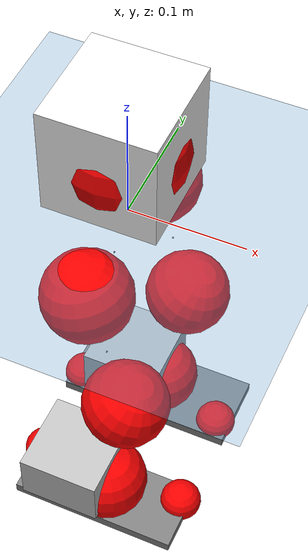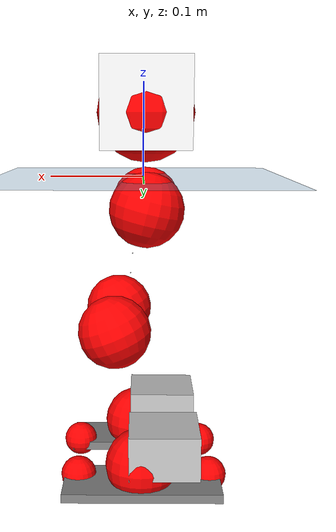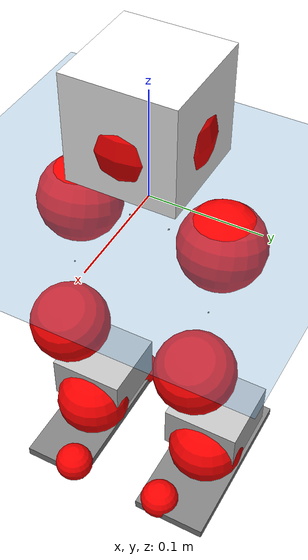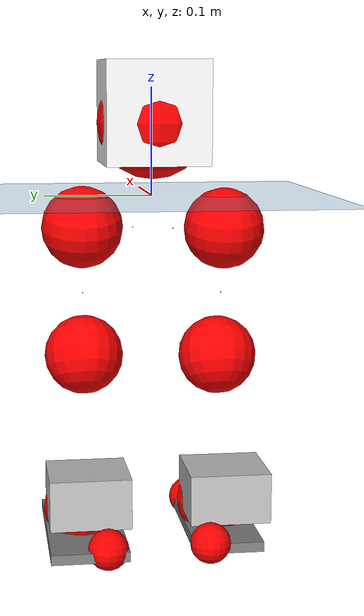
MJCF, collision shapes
<mujoco model="pi_12dof_release_v1">
  <compiler angle="radian" assetdir="assets" balanceinertia="true" inertiafromgeom="false"/>

  <option timestep="0.005" density="1.2" viscosity="2e-05"/>

  <size nkey="1"/>

  <visual>
    <quality shadowsize="8192"/>
    <map shadowclip="0.5"/>
  </visual>

  <default>
    <default class="/">
      <joint armature="0.01" damping="0.01" frictionloss="0.01"/>
      <geom contype="0" conaffinity="0" group="1" solref="-1000 -80"/>
      <site size="0.01 0.005 0.005" group="5"/>
      <general forcelimited="true" biastype="affine" gainprm="20" biasprm="0 -20 -0.5"/>
      <default class="foot">
        <geom size="0.0845 0.036 0.005" type="box" condim="6" group="4" priority="1" friction="0.9 0.2 0.2" solimp="0.015 1 0.005"/>
      </default>
      <default class="reward_collision_sphere">
        <geom group="5" rgba="1 0 0 1"/>
      </default>
    </default>
  </default>

  <asset>
    <texture type="skybox" colorspace="auto" name="//unnamed_texture_0" builtin="gradient" rgb1="0.95 0.95 0.95" rgb2="0.95 0.95 0.95" width="100" height="600"/>
    <texture type="2d" colorspace="auto" name="texplane" builtin="checker" rgb1="0.345 0.575 0.748" rgb2="0.345 0.575 0.748" markrgb="1 1 1" width="512" height="512"/>
    <material name="MatPlane" class="/" texture="texplane" texuniform="true" texrepeat="2 2" specular="0.9"/>
    <mesh name="baselink_1" class="/" file="baselink_1.STL"/>
    <mesh name="r_hip_pitch_link" class="/" file="r_hip_pitch_link.STL"/>
    <mesh name="r_hip_roll_link" class="/" file="r_hip_roll_link.STL"/>
    <mesh name="r_thigh_link" class="/" file="r_thigh_link.STL"/>
    <mesh name="r_calf_link" class="/" file="r_calf_link.STL"/>
    <mesh name="r_ankle_pitch_link" class="/" file="r_ankle_pitch_link.STL"/>
    <mesh name="r_ankle_roll_link" class="/" file="r_ankle_roll_link.STL"/>
    <mesh name="l_hip_pitch_link" class="/" file="l_hip_pitch_link.STL"/>
    <mesh name="l_hip_roll_link" class="/" file="l_hip_roll_link.STL"/>
    <mesh name="l_thigh_link" class="/" file="l_thigh_link.STL"/>
    <mesh name="l_calf_link" class="/" file="l_calf_link.STL"/>
    <mesh name="l_ankle_pitch_link" class="/" file="l_ankle_pitch_link.STL"/>
    <mesh name="l_ankle_roll_link" class="/" file="l_ankle_roll_link.STL"/>
  </asset>

  <worldbody>
    <geom name="floor" class="/" size="100 100 0.125" type="plane" group="0" material="MatPlane"/>
    <light name="toplight_shadow" class="/" pos="0 0 5" dir="0.0990148 0.0990148 -0.990148" type="directional" ambient="0.04 0.04 0.04" diffuse="0.55 0.55 0.55" specular="0.12 0.12 0.12"/>
    <light name="toplight_fill" class="/" pos="0 0 5" dir="0.0990148 0.0990148 -0.990148" type="directional" castshadow="false" ambient="0.04 0.04 0.04" diffuse="0.3 0.3 0.3" specular="0.08 0.08 0.08"/>
    <body name="trunk" pos="-0.00247552 -0.000951582 0.00093971" quat="1 -0.000198617 -0.000824855 5.02369e-05">
      <inertial pos="-0.000157068 0.000608658 0.0385271" quat="0.696923 0.0138779 0.0100944 0.716941" mass="1.85554" diaginertia="0.0125872 0.00423307 0.00340008"/>
      <joint name="//unnamed_joint_0" type="free"/>
      <geom name="//unnamed_geom_1" class="/" type="mesh" density="0" rgba="1 1 1 1" mesh="baselink_1"/>
      <geom name="//unnamed_geom_2" class="/" size="0.0476908 0.0476908 0.0476908" pos="0 0 0.0763876" type="box" rgba="1 1 1 1"/>
      <geom name="//unnamed_geom_3" class="reward_collision_sphere" size="0.0524599" pos="0 0 0.0668392"/>
      <site name="imu" class="/" pos="0.000319179 -0.00505621 0.00485522" size="0.00953817"/>
      <camera name="track" class="/" pos="0 -1.71616 0" quat="0.707107 0.707107 0 0" mode="trackcom"/>
      <camera name="ego_camera" class="/" pos="0.0786392 0 0.171872" quat="-0.5 -0.5 0.5 0.5"/>
      <body name="r_hip_pitch_link" pos="-0.000528988 -0.0190488 -0.0319434" quat="0.992056 -0.000269506 -0.125794 1.79154e-05">
        <inertial pos="-0.00149136 -0.0486397 0.000786968" quat="-0.0210866 0.706663 -0.0288082 0.706649" mass="0.328627" diaginertia="0.000141336 4.54189e-05 6.75312e-05"/>
        <joint name="r_hip_pitch_joint" class="/" pos="0 0 0" axis="0.000969683 -0.999999 0.000570517" range="-1.75189 1.22844" armature="0.0094962" damping="0.0158734" frictionloss="0.0100367"/>
        <geom name="//unnamed_geom_4" class="/" type="mesh" density="0" rgba="0.75294 0.75294 0.75294 1" mesh="r_hip_pitch_link"/>
        <geom name="//unnamed_geom_5" class="/" size="0.000476908 0.000476908 0.000476908" type="box" rgba="0.75294 0.75294 0.75294 1"/>
        <body name="r_hip_roll_link" pos="-0.000713888 -0.0486883 -0.000484263" quat="1 -4.10145e-05 -2.4734e-05 5.35269e-05">
          <inertial pos="0.00111024 0.000507625 -0.0567157" quat="0.704546 -0.077392 -0.0831456 0.700508" mass="0.339882" diaginertia="0.000419641 0.000127496 0.000102878"/>
          <joint name="r_hip_roll_joint" class="/" pos="0 0 0" axis="-1 -0.000348735 0.000420583" stiffness="0.000675378" range="-0.15577 0.48777" armature="0.00838713" damping="9.57306e-05" frictionloss="0.00962652"/>
          <geom name="//unnamed_geom_6" class="/" type="mesh" density="0" rgba="0.75294 0.75294 0.75294 1" mesh="r_hip_roll_link"/>
          <geom name="//unnamed_geom_7" class="/" size="0.000476908 0.000476908 0.000476908" type="box" rgba="0.75294 0.75294 0.75294 1"/>
          <geom name="//unnamed_geom_8" class="reward_collision_sphere" size="0.0381527"/>
          <body name="r_thigh_link" pos="-0.000622732 -0.000310219 -0.0653466" quat="1 0.000140965 -0.000194271 -0.000151411">
            <inertial pos="0.00062034 0.000360824 -0.0465722" quat="0.744161 0.667995 -0.0026228 -4.554e-05" mass="0.0966016" diaginertia="0.000160483 4.38453e-05 4.55861e-05"/>
            <joint name="r_thigh_joint" class="/" pos="0 0 0" axis="0.00472572 0.00176102 -0.999987" range="-0.301493 0.604003" armature="0.00857394" damping="0" frictionloss="0.00929666"/>
            <geom name="//unnamed_geom_9" class="/" type="mesh" density="0" rgba="0.75294 0.75294 0.75294 1" mesh="r_thigh_link"/>
            <geom name="//unnamed_geom_10" class="/" size="0.000476908 0.000476908 0.000476908" type="box" rgba="0.75294 0.75294 0.75294 1"/>
            <body name="r_calf_link" pos="-0.000670608 0.000324289 -0.0669293" quat="0.947559 -6.54243e-05 0.319582 2.34101e-06">
              <inertial pos="0.00107239 -0.00182748 -0.0667142" quat="0.999971 -0.00436012 0.000131206 0.00625585" mass="0.73733" diaginertia="0.00451582 0.00165991 0.000139288"/>
              <joint name="r_calf_joint" class="/" pos="0 0 0" axis="-0.00187839 -0.999998 0.000488704" stiffness="0.00830806" range="-1.65985 0.607037" armature="0.0109044" damping="0" frictionloss="0.0107703"/>
              <geom name="//unnamed_geom_11" class="/" type="mesh" density="0" rgba="0.75294 0.75294 0.75294 1" mesh="r_calf_link"/>
              <geom name="//unnamed_geom_12" class="/" size="0.000476908 0.000476908 0.000476908" type="box" rgba="0.75294 0.75294 0.75294 1"/>
              <geom name="//unnamed_geom_13" class="reward_collision_sphere" size="0.0381527"/>
              <body name="r_ankle_pitch_link" pos="-0.000581368 0.00114436 -0.13165" quat="0.980011 0.000266035 -0.198937 -0.00121738">
                <inertial pos="0.00388455 0.000580369 0.000744296" quat="0.00224092 0.707349 -0.00269249 0.706855" mass="0.149587" diaginertia="0.000393298 0.000105477 9.43077e-05"/>
                <joint name="r_ankle_pitch_joint" class="/" pos="0 0 0" axis="0.00558067 -0.999903 -0.0127887" range="-1.33077 0.531048" armature="0.00961655" damping="0.00799105" frictionloss="0.00915055"/>
                <geom name="//unnamed_geom_14" class="/" type="mesh" density="0" rgba="0.75294 0.75294 0.75294 1" mesh="r_ankle_pitch_link"/>
                <geom name="//unnamed_geom_15" class="/" size="0.0371988 0.0381527 0.0238454" type="box" rgba="0.75294 0.75294 0.75294 1"/>
                <body name="r_ankle_roll_link" pos="0.0811981 0.0033866 5.84284e-05" quat="1 -5.2209e-06 4.17888e-05 -3.09286e-05">
                  <inertial pos="-0.0250994 0.000256961 -0.0130141" quat="0.560178 0.430635 0.43377 0.559104" mass="0.454684" diaginertia="0.00150207 0.000483668 0.000230929"/>
                  <joint name="r_ankle_roll_joint" class="/" pos="0 0 0" axis="-0.999909 0.0126541 0.00464362" stiffness="0.00124797" range="-0.162476 0.114586" armature="0.00926237" damping="0.00168004" frictionloss="0.00942275"/>
                  <geom name="//unnamed_geom_16" class="/" type="mesh" density="0" rgba="0.75294 0.75294 0.75294 1" mesh="r_ankle_roll_link"/>
                  <geom name="//unnamed_geom_17" class="/" type="mesh" rgba="0.75294 0.75294 0.75294 1" mesh="r_ankle_roll_link"/>
                  <geom name="right_foot" class="foot" size="0.0781949 0.0324313 0.00476053" pos="-0.0534747 0 -0.0420132"/>
                  <geom name="//unnamed_geom_19" class="reward_collision_sphere" size="0.0381527" pos="-0.0524261 0 -0.0190969"/>
                  <geom name="//unnamed_geom_20" class="reward_collision_sphere" size="0.0190763" pos="0.0157278 0.0171616 -0.0381938"/>
                  <geom name="//unnamed_geom_21" class="reward_collision_sphere" size="0.0190763" pos="-0.125823 0.0171616 -0.0381938"/>
                  <site name="right_foot" class="foot" pos="-0.0534747 0 -0.0420132" size="0.00953817"/>
                </body>
              </body>
            </body>
          </body>
        </body>
      </body>
      <body name="l_hip_pitch_link" pos="0.00148564 0.0188532 -0.0306088" quat="0.99233 2.66507e-05 -0.123619 0.000709154">
        <inertial pos="0.00333932 0.04721 0.00026419" quat="-0.0383888 0.705594 0.0298203 0.706947" mass="0.336919" diaginertia="0.000163484 4.98876e-05 8.12814e-05"/>
        <joint name="l_hip_pitch_joint" class="/" pos="0 0 0" axis="0.00159839 0.99999 0.00414116" range="-1.24374 1.75723" armature="0.0102144" damping="0" frictionloss="0.00914572"/>
        <geom name="//unnamed_geom_22" class="/" type="mesh" density="0" rgba="0.75294 0.75294 0.75294 1" mesh="l_hip_pitch_link"/>
        <geom name="//unnamed_geom_23" class="/" size="0.000476908 0.000476908 0.000476908" type="box" rgba="0.75294 0.75294 0.75294 1"/>
        <body name="l_hip_roll_link" pos="-0.00204079 0.047768 0.00136896" quat="0.999999 -0.000698564 0.000858497 0.00037921">
          <inertial pos="-0.00163128 -0.000326621 -0.0577612" quat="0.697308 -0.0853701 -0.0792475 0.707243" mass="0.329569" diaginertia="0.000417379 0.000126795 0.000100751"/>
          <joint name="l_hip_roll_joint" class="/" pos="0 0 0" axis="-0.999985 0.00540542 -0.000892819" stiffness="0.00818072" range="-0.479925 0.134379" armature="0.0101472" damping="0" frictionloss="0.0093317"/>
          <geom name="//unnamed_geom_24" class="/" type="mesh" density="0" rgba="0.75294 0.75294 0.75294 1" mesh="l_hip_roll_link"/>
          <geom name="//unnamed_geom_25" class="/" size="0.000476908 0.000476908 0.000476908" type="box" rgba="0.75294 0.75294 0.75294 1"/>
          <geom name="//unnamed_geom_26" class="reward_collision_sphere" size="0.0381527"/>
          <body name="l_thigh_link" pos="-2.14761e-05 -0.00119142 -0.0664327" quat="1 -3.45827e-05 0.000262923 -0.000194407">
            <inertial pos="0.000337159 -0.00138093 -0.0455017" quat="0.675892 0.737001 -0.000712547 -6.7766e-05" mass="0.0977091" diaginertia="0.000157957 4.40079e-05 4.55239e-05"/>
            <joint name="l_thigh_joint" class="/" pos="0 0 0" axis="0.00134264 -0.00289891 -0.999995" range="-0.600952 0.299807" armature="0.00958026" damping="0.000956595" frictionloss="0.00947914"/>
            <geom name="//unnamed_geom_27" class="/" type="mesh" density="0" rgba="0.75294 0.75294 0.75294 1" mesh="l_thigh_link"/>
            <geom name="//unnamed_geom_28" class="/" size="0.000476908 0.000476908 0.000476908" type="box" rgba="0.75294 0.75294 0.75294 1"/>
            <body name="l_calf_link" pos="0.000695644 -0.00184994 -0.0656974" quat="0.947627 -0.000270201 0.319379 -0.000606746">
              <inertial pos="0.000375761 0.00385623 -0.0670811" quat="0.999927 0.0111443 -0.00411474 -0.00210781" mass="0.707558" diaginertia="0.00447719 0.00164073 0.0001404"/>
              <joint name="l_calf_joint" class="/" pos="0 0 0" axis="0.000650632 1 0.000661491" stiffness="0.00395555" range="-0.642905 1.65419" armature="0.00831723" damping="0.00433614" frictionloss="0.0107333"/>
              <geom name="//unnamed_geom_29" class="/" type="mesh" density="0" rgba="0.75294 0.75294 0.75294 1" mesh="l_calf_link"/>
              <geom name="//unnamed_geom_30" class="/" size="0.000476908 0.000476908 0.000476908" type="box" rgba="0.75294 0.75294 0.75294 1"/>
              <geom name="//unnamed_geom_31" class="reward_collision_sphere" size="0.0381527"/>
              <body name="l_ankle_pitch_link" pos="0.00106518 0.00168605 -0.135587" quat="0.980098 -9.65257e-05 -0.198516 0.000250285">
                <inertial pos="0.00510483 -0.000473007 -5.54826e-05" quat="-0.00169532 0.707183 0.0023102 0.707025" mass="0.155547" diaginertia="0.000398923 0.000104761 9.35637e-05"/>
                <joint name="l_ankle_pitch_joint" class="/" pos="0 0 0" axis="-0.00102604 0.999999 0.000153161" range="-0.492093 1.30082" armature="0.00961752" damping="0.00229903" frictionloss="0.00915589"/>
                <geom name="//unnamed_geom_32" class="/" type="mesh" density="0" rgba="0.75294 0.75294 0.75294 1" mesh="l_ankle_pitch_link"/>
                <geom name="//unnamed_geom_33" class="/" size="0.0371988 0.0381527 0.0238454" type="box" rgba="0.75294 0.75294 0.75294 1"/>
                <body name="l_ankle_roll_link" pos="0.076694 0.00257364 -9.39178e-05" quat="1 -0.00021361 1.61964e-05 -0.000271124">
                  <inertial pos="-0.0229974 -0.000791367 -0.0140367" quat="0.561163 0.431864 0.429926 0.560136" mass="0.449932" diaginertia="0.00138725 0.000458032 0.000219674"/>
                  <joint name="l_ankle_roll_joint" class="/" pos="0 0 0" axis="-0.999956 -0.00522125 0.0078034" range="-0.132833 0.154899" armature="0.00978808" damping="0.00742833" frictionloss="0.00911857"/>
                  <geom name="//unnamed_geom_34" class="/" type="mesh" density="0" rgba="0.75294 0.75294 0.75294 1" mesh="l_ankle_roll_link"/>
                  <geom name="//unnamed_geom_35" class="/" type="mesh" rgba="0.75294 0.75294 0.75294 1" mesh="l_ankle_roll_link"/>
                  <geom name="left_foot" class="foot" size="0.0840134 0.0363674 0.00475853" pos="-0.0534747 0 -0.0420132"/>
                  <geom name="//unnamed_geom_37" class="reward_collision_sphere" size="0.0381527" pos="-0.0524261 0 -0.0190969"/>
                  <geom name="//unnamed_geom_38" class="reward_collision_sphere" size="0.0190763" pos="0.0157278 -0.0171616 -0.0381938"/>
                  <geom name="//unnamed_geom_39" class="reward_collision_sphere" size="0.0190763" pos="-0.125823 -0.0171616 -0.0381938"/>
                  <site name="left_foot" class="foot" pos="-0.0534747 0 -0.0420132" size="0.00953817"/>
                </body>
              </body>
            </body>
          </body>
        </body>
      </body>
    </body>
  </worldbody>

  <contact>
    <pair class="/" geom1="floor" geom2="right_foot" name="//unnamed_contact_1"/>
    <pair class="/" geom1="floor" geom2="left_foot" name="//unnamed_contact_0"/>
  </contact>

  <actuator>
    <general name="r_hip_pitch_joint" class="/" joint="r_hip_pitch_joint" forcerange="-20.5311 20.5311" gainprm="19.1536" biasprm="0 -19.1536 -0.483068"/>
    <general name="r_hip_roll_joint" class="/" joint="r_hip_roll_joint" forcerange="-19.9737 19.9737" gainprm="19.1536" biasprm="0 -19.1536 -0.483068"/>
    <general name="r_thigh_joint" class="/" joint="r_thigh_joint" forcerange="-19.9874 19.9874" gainprm="19.1536" biasprm="0 -19.1536 -0.483068"/>
    <general name="r_calf_joint" class="/" joint="r_calf_joint" forcerange="-20.2616 20.2616" gainprm="19.1536" biasprm="0 -19.1536 -0.483068"/>
    <general name="r_ankle_pitch_joint" class="/" joint="r_ankle_pitch_joint" forcerange="-19.6249 19.6249" gainprm="19.1536" biasprm="0 -19.1536 -0.483068"/>
    <general name="r_ankle_roll_joint" class="/" joint="r_ankle_roll_joint" forcerange="-20.3539 20.3539" gainprm="19.1536" biasprm="0 -19.1536 -0.483068"/>
    <general name="l_hip_pitch_joint" class="/" joint="l_hip_pitch_joint" forcerange="-19.8045 19.8045" gainprm="19.1536" biasprm="0 -19.1536 -0.483068"/>
    <general name="l_hip_roll_joint" class="/" joint="l_hip_roll_joint" forcerange="-20.2774 20.2774" gainprm="19.1536" biasprm="0 -19.1536 -0.483068"/>
    <general name="l_thigh_joint" class="/" joint="l_thigh_joint" forcerange="-20.0736 20.0736" gainprm="19.1536" biasprm="0 -19.1536 -0.483068"/>
    <general name="l_calf_joint" class="/" joint="l_calf_joint" forcerange="-21.964 21.964" gainprm="19.1536" biasprm="0 -19.1536 -0.483068"/>
    <general name="l_ankle_pitch_joint" class="/" joint="l_ankle_pitch_joint" forcerange="-20.0849 20.0849" gainprm="19.1536" biasprm="0 -19.1536 -0.483068"/>
    <general name="l_ankle_roll_joint" class="/" joint="l_ankle_roll_joint" forcerange="-19.0547 19.0547" gainprm="19.1536" biasprm="0 -19.1536 -0.483068"/>
  </actuator>

  <sensor>
    <gyro site="imu" name="imu_angular_velocity"/>
    <velocimeter site="imu" name="imu_linear_velocity"/>
    <framelinvel objtype="site" objname="left_foot" name="left_foot_global_linear_velocity"/>
    <framelinvel objtype="site" objname="right_foot" name="right_foot_global_linear_velocity"/>
  </sensor>

  <keyframe>
    <key name="home" qpos="0 0 0.291 1 0 0 0 0.4 0 0 -0.8 0.4 0 -0.4 0 0 0.8 -0.4 0"/>
  </keyframe>
</mujoco>
